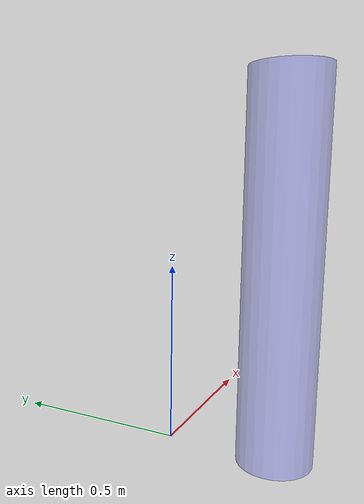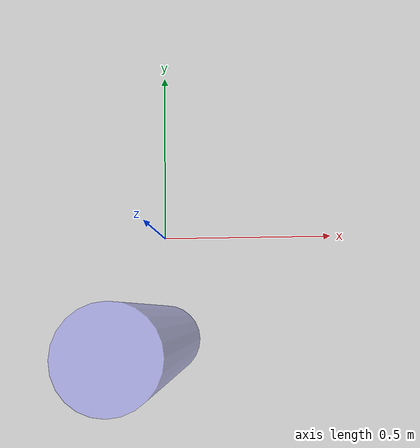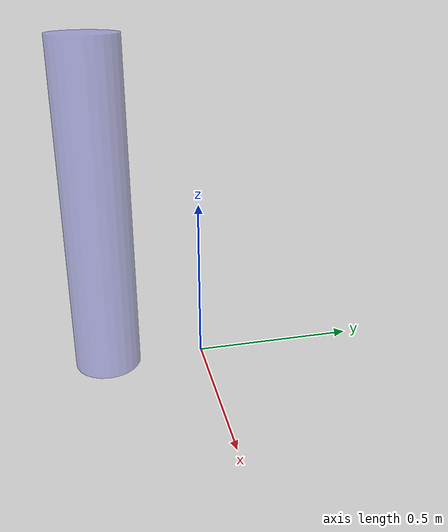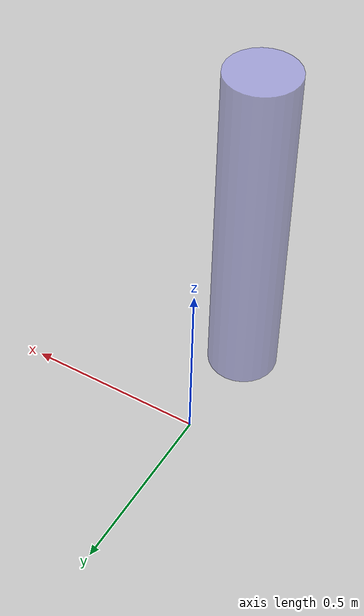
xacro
<?xml version="1.0"?>

<robot name="test cylinder" xmlns:xacro="http://www.ros.org/wiki/xacro">

  <xacro:property name="mass" value="0.01" />
  <xacro:property name="length" value="1" />
  <xacro:property name="width" value="0.01" />
  <xacro:property name="height" value="1" />
  <xacro:property name="radius" value="0.1" />

  <!-- Import all Gazebo-customization elements, including Gazebo colors -->
  <xacro:include filename="$(find rrbot_description)/urdf/testcylinder.gazebo" />
  <!-- Import Rviz colors -->
  <xacro:include filename="$(find rrbot_description)/urdf/materials.xacro" />

  <!-- Used for fixing robot to Gazebo 'base_link' -->
  <link name="world"/>

  <joint name="fixed" type="fixed">
    <parent link="world"/>
    <child link="cylinder"/>
  </joint>

    <link name="cylinder">
      <visual>
        <origin xyz="0.001875 -0.3 ${height/2}" rpy="0.0 0.0 0.0"/>
        <geometry>
          <cylinder length ="${length}" radius = "${radius}"/>
        </geometry>
        <material name="gray"><color rgba="0.5 0.5 0.9 0.5"/></material>
      </visual>
      <collision>
        <origin xyz="0.001875 -0.3 ${height/2}" rpy="0.0 0.0 0.0"/>
        <geometry>
          <cylinder length ="${length}" radius = "${radius}"/>
        </geometry>
      </collision>
    <inertial>
      <mass value="1000"/>
      <inertia
	  ixx="0.0" ixy="0.0" ixz="0.0"
	  iyy="0.0" iyz="0.0"
	  izz="0.0"/>
    </inertial>
    </link>

</robot>
